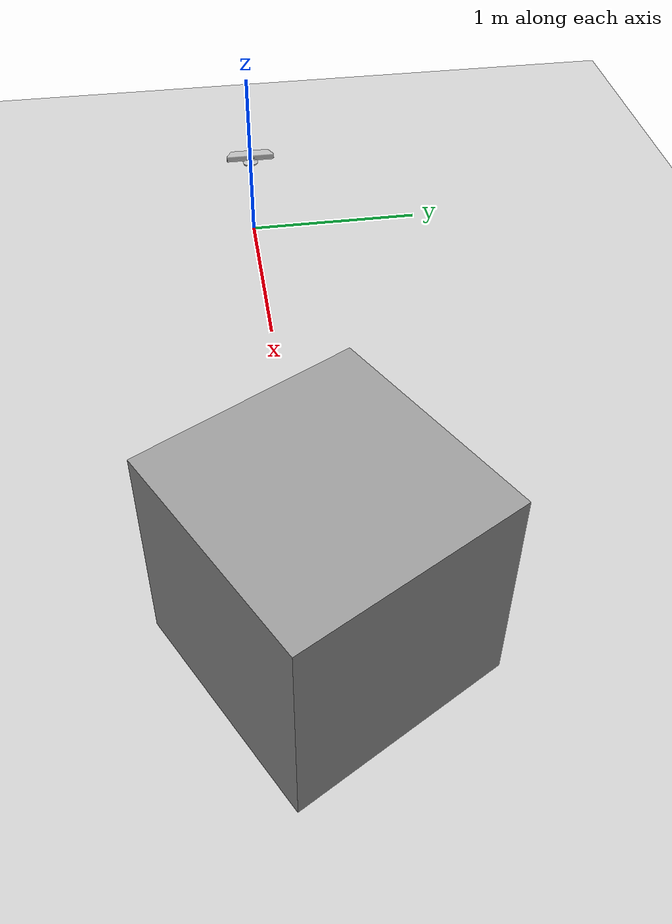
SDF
<sdf version="1.6">
 <world name="default">
  <light name="sun" type="directional">
   <pose>0 0 10 0 -0 0</pose>
   <diffuse>0.8 0.8 0.8 1</diffuse>
   <specular>0.1 0.1 0.1 1</specular>
   <attenuation>
    <range>1000</range>
    <constant>0.9</constant>
    <linear>0.01</linear>
    <quadratic>0.001</quadratic>
   </attenuation>
   <direction>-0.5 0.5 -1</direction>
  </light>
  <model name="ground_plane">
   <static>1</static>
   <link name="link">
    <collision name="collision">
     <geometry><plane><normal>0 0 1</normal><size>100 100</size></plane></geometry>
     <surface><friction><ode><mu>100</mu><mu2>50</mu2></ode></friction></surface>
    </collision>
    <visual name="visual">
     <cast_shadows>0</cast_shadows>
     <geometry><plane><normal>0 0 1</normal><size>100 100</size></plane></geometry>
     <material>
      <script><uri>file://media/materials/scripts/gazebo.material</uri><name>Gazebo/Grey</name></script>
     </material>
    </visual>
   </link>
  </model>
  <gravity>0 0 -9.8</gravity>
  <magnetic_field>6e-06 2.3e-05 -4.2e-05</magnetic_field>
  <atmosphere type="adiabatic"/>
  <physics name="default_physics" default="0" type="ode">
   <max_step_size>0.001</max_step_size>
   <real_time_factor>1</real_time_factor>
   <real_time_update_rate>1000</real_time_update_rate>
  </physics>
  <scene><ambient>0.4 0.4 0.4 1</ambient><background>0.7 0.7 0.7 1</background><shadows>1</shadows></scene>
  <spherical_coordinates>
   <surface_model>EARTH_WGS84</surface_model>
   <latitude_deg>0</latitude_deg>
   <longitude_deg>0</longitude_deg>
   <elevation>0</elevation>
   <heading_deg>0</heading_deg>
  </spherical_coordinates>
  <model name="unit_box">
   <pose>3 0 0.5 0 -0 0.5</pose>
   <link name="link">
    <inertial>
     <mass>1</mass>
     <inertia>
      <ixx>0.166667</ixx>
      <ixy>0</ixy>
      <ixz>0</ixz>
      <iyy>0.166667</iyy>
      <iyz>0</iyz>
      <izz>0.166667</izz>
     </inertia>
    </inertial>
    <collision name="collision"><geometry><box><size>1 1 1</size></box></geometry></collision>
    <visual name="visual">
     <geometry><box><size>1 1 1</size></box></geometry>
     <material>
      <script><name>Gazebo/Grey</name><uri>file://media/materials/scripts/gazebo.material</uri></script>
     </material>
    </visual>
   </link>
  </model>
  <model name="kinect_ros">
   <static>1</static>
   <pose>0 0 0.5 0 -0 0</pose>
   <link name="link">
    <inertial><mass>0.1</mass></inertial>
    <collision name="collision"><geometry><box><size>0.073 0.276 0.072</size></box></geometry></collision>
    <visual name="visual"><geometry><mesh><uri>model://kinect/meshes/kinect.dae</uri></mesh></geometry></visual>
    <sensor name="camera" type="depth">
     <update_rate>20</update_rate>
     <camera name="__default__">
      <horizontal_fov>0.8</horizontal_fov>
      <image><width>640</width><height>480</height><format>R8G8B8</format></image>
      <clip><near>0.05</near><far>10</far></clip>
     </camera>
     <plugin name="camera_plugin" filename="libgazebo_ros_openni_kinect.so">
      <baseline>0.2</baseline>
      <alwaysOn>true</alwaysOn>
      <updateRate>0.0</updateRate>
      <cameraName>camera_ir</cameraName>
      <imageTopicName>/camera/color/image_raw</imageTopicName>
      <cameraInfoTopicName>/camera/color/camera_info</cameraInfoTopicName>
      <depthImageTopicName>/camera/depth/image_raw</depthImageTopicName>
      <depthImageCameraInfoTopicName>/camera/depth/camera_info</depthImageCameraInfoTopicName>
      <pointCloudTopicName>/camera/depth/points</pointCloudTopicName>
      <frameName>camera_link</frameName>
      <pointCloudCutoff>0.5</pointCloudCutoff>
      <pointCloudCutoffMax>10</pointCloudCutoffMax>
      <distortionK1>0</distortionK1>
      <distortionK2>0</distortionK2>
      <distortionK3>0</distortionK3>
      <distortionT1>0</distortionT1>
      <distortionT2>0</distortionT2>
      <CxPrime>0</CxPrime>
      <Cx>0</Cx>
      <Cy>0</Cy>
      <focalLength>0</focalLength>
      <hackBaseline>0</hackBaseline>
     </plugin>
    </sensor>
   </link>
  </model>
  <light name="user_point_light_0" type="point">
   <pose>-0.736531 4.35102 1 0 -0 0</pose>
   <diffuse>0.5 0.5 0.5 1</diffuse>
   <specular>0.1 0.1 0.1 1</specular>
   <attenuation>
    <range>20</range>
    <constant>0.5</constant>
    <linear>0.01</linear>
    <quadratic>0.001</quadratic>
   </attenuation>
   <cast_shadows>0</cast_shadows>
   <direction>0 0 -1</direction>
  </light>
 </world>
</sdf>
